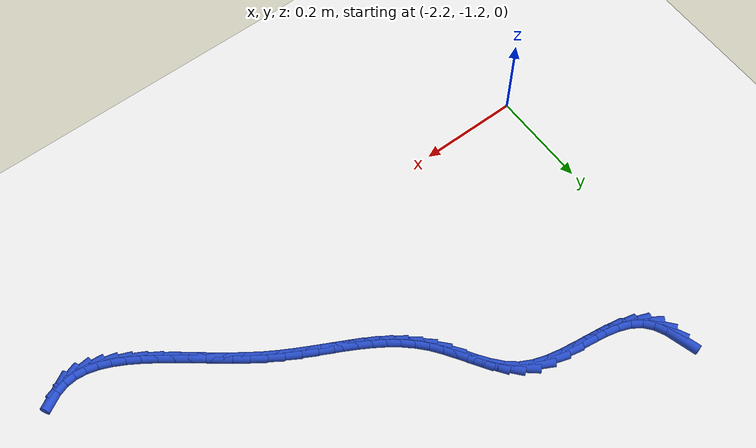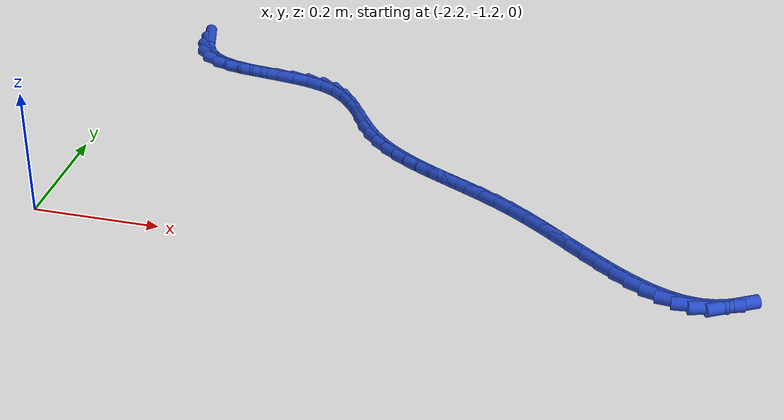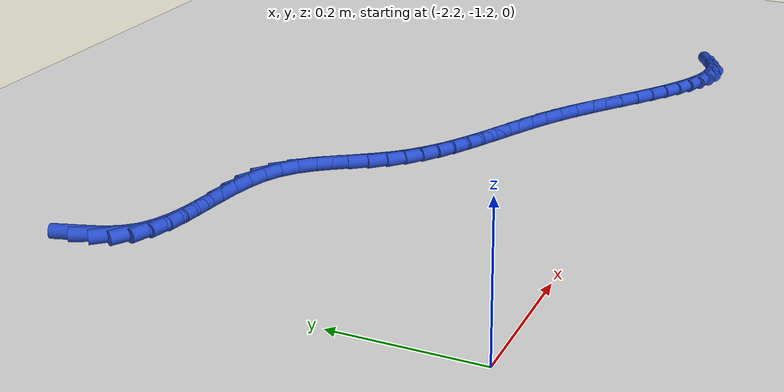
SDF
<sdf version="1.6">
 <world name="default">
  <model name="ground_plane">
   <static>1</static>
   <link name="link">
    <collision name="collision">
     <geometry><plane><normal>0 0 1</normal><size>100 100</size></plane></geometry>
     <surface><friction><ode><mu>100</mu><mu2>50</mu2></ode></friction></surface>
    </collision>
    <visual name="visual">
     <cast_shadows>0</cast_shadows>
     <geometry><plane><normal>0 0 1</normal><size>100 100</size></plane></geometry>
     <material>
      <script><uri>file://media/materials/scripts/gazebo.material</uri><name>Gazebo/WhiteGlow</name></script>
     </material>
    </visual>
   </link>
  </model>
  <model name="line">
   <link name="link_148">
    <pose>-2.1224701203827667 -0.6109059372591643 0.01 0 1.57 -1.2890570382060071</pose>
    <collision name="collision">
     <geometry><cylinder><radius>0.01</radius><length>0.08</length></cylinder></geometry>
    </collision>
    <visual name="visual">
     <material>
      <script><name>Gazebo/Blue</name><uri>file://media/materials/scripts/gazebo.material</uri></script>
     </material>
     <geometry><cylinder><radius>0.01</radius><length>0.08</length></cylinder></geometry>
    </visual>
   </link>
   <link name="link_149">
    <pose>-2.11513709954624 -0.6362412813130506 0.01 0 1.57 -1.1098917045002723</pose>
    <collision name="collision">
     <geometry><cylinder><radius>0.01</radius><length>0.08</length></cylinder></geometry>
    </collision>
    <visual name="visual">
     <material>
      <script><name>Gazebo/Blue</name><uri>file://media/materials/scripts/gazebo.material</uri></script>
     </material>
     <geometry><cylinder><radius>0.01</radius><length>0.08</length></cylinder></geometry>
    </visual>
   </link>
   <link name="link_150">
    <pose>-2.1042820113516933 -0.6581011561322543 0.01 0 1.57 -0.8658208890042287</pose>
    <collision name="collision">
     <geometry><cylinder><radius>0.01</radius><length>0.08</length></cylinder></geometry>
    </collision>
    <visual name="visual">
     <material>
      <script><name>Gazebo/Blue</name><uri>file://media/materials/scripts/gazebo.material</uri></script>
     </material>
     <geometry><cylinder><radius>0.01</radius><length>0.08</length></cylinder></geometry>
    </visual>
   </link>
   <link name="link_151">
    <pose>-2.08924793823049 -0.675771057123752 0.01 0 1.57 -0.5837029706741286</pose>
    <collision name="collision">
     <geometry><cylinder><radius>0.01</radius><length>0.08</length></cylinder></geometry>
    </collision>
    <visual name="visual">
     <material>
      <script><name>Gazebo/Blue</name><uri>file://media/materials/scripts/gazebo.material</uri></script>
     </material>
     <geometry><cylinder><radius>0.01</radius><length>0.08</length></cylinder></geometry>
    </visual>
   </link>
   <link name="link_152">
    <pose>-2.0695790133497622 -0.6887618666631259 0.01 0 1.57 -0.36433519599291586</pose>
    <collision name="collision">
     <geometry><cylinder><radius>0.01</radius><length>0.08</length></cylinder></geometry>
    </collision>
    <visual name="visual">
     <material>
      <script><name>Gazebo/Blue</name><uri>file://media/materials/scripts/gazebo.material</uri></script>
     </material>
     <geometry><cylinder><radius>0.01</radius><length>0.08</length></cylinder></geometry>
    </visual>
   </link>
   <link name="link_153">
    <pose>-2.0458974718548637 -0.6977930682076284 0.01 0 1.57 -0.22787009067466782</pose>
    <collision name="collision">
     <geometry><cylinder><radius>0.01</radius><length>0.08</length></cylinder></geometry>
    </collision>
    <visual name="visual">
     <material>
      <script><name>Gazebo/Blue</name><uri>file://media/materials/scripts/gazebo.material</uri></script>
     </material>
     <geometry><cylinder><radius>0.01</radius><length>0.08</length></cylinder></geometry>
    </visual>
   </link>
   <link name="link_154">
    <pose>-2.0191853884349884 -0.703987541619211 0.01 0 1.57 -0.15455918231804705</pose>
    <collision name="collision">
     <geometry><cylinder><radius>0.01</radius><length>0.08</length></cylinder></geometry>
    </collision>
    <visual name="visual">
     <material>
      <script><name>Gazebo/Blue</name><uri>file://media/materials/scripts/gazebo.material</uri></script>
     </material>
     <geometry><cylinder><radius>0.01</radius><length>0.08</length></cylinder></geometry>
    </visual>
   </link>
   <link name="link_155">
    <pose>-1.990425088464767 -0.7084684477895372 0.01 0 1.57 -0.1297067259883996</pose>
    <collision name="collision">
     <geometry><cylinder><radius>0.01</radius><length>0.08</length></cylinder></geometry>
    </collision>
    <visual name="visual">
     <material>
      <script><name>Gazebo/Blue</name><uri>file://media/materials/scripts/gazebo.material</uri></script>
     </material>
     <geometry><cylinder><radius>0.01</radius><length>0.08</length></cylinder></geometry>
    </visual>
   </link>
   <link name="link_156">
    <pose>-1.960598897318829 -0.7123589476102717 0.01 0 1.57 -0.1468224834271111</pose>
    <collision name="collision">
     <geometry><cylinder><radius>0.01</radius><length>0.08</length></cylinder></geometry>
    </collision>
    <visual name="visual">
     <material>
      <script><name>Gazebo/Blue</name><uri>file://media/materials/scripts/gazebo.material</uri></script>
     </material>
     <geometry><cylinder><radius>0.01</radius><length>0.08</length></cylinder></geometry>
    </visual>
   </link>
   <link name="link_157">
    <pose>-1.9306891403718072 -0.7167822019730778 0.01 0 1.57 -0.20655836515871398</pose>
    <collision name="collision">
     <geometry><cylinder><radius>0.01</radius><length>0.08</length></cylinder></geometry>
    </collision>
    <visual name="visual">
     <material>
      <script><name>Gazebo/Blue</name><uri>file://media/materials/scripts/gazebo.material</uri></script>
     </material>
     <geometry><cylinder><radius>0.01</radius><length>0.08</length></cylinder></geometry>
    </visual>
   </link>
   <link name="link_158">
    <pose>-1.9016781429983314 -0.7228613717696208 0.01 0 1.57 -0.3155989814128417</pose>
    <collision name="collision">
     <geometry><cylinder><radius>0.01</radius><length>0.08</length></cylinder></geometry>
    </collision>
    <visual name="visual">
     <material>
      <script><name>Gazebo/Blue</name><uri>file://media/materials/scripts/gazebo.material</uri></script>
     </material>
     <geometry><cylinder><radius>0.01</radius><length>0.08</length></cylinder></geometry>
    </visual>
   </link>
   <link name="link_159">
    <pose>-1.874548230573033 -0.7317196178915643 0.01 0 1.57 -0.48409556712394136</pose>
    <collision name="collision">
     <geometry><cylinder><radius>0.01</radius><length>0.08</length></cylinder></geometry>
    </collision>
    <visual name="visual">
     <material>
      <script><name>Gazebo/Blue</name><uri>file://media/materials/scripts/gazebo.material</uri></script>
     </material>
     <geometry><cylinder><radius>0.01</radius><length>0.08</length></cylinder></geometry>
    </visual>
   </link>
   <link name="link_160">
    <pose>-1.8502814547759139 -0.7444797585713886 0.01 0 1.57 -0.6917522399527462</pose>
    <collision name="collision">
     <geometry><cylinder><radius>0.01</radius><length>0.08</length></cylinder></geometry>
    </collision>
    <visual name="visual">
     <material>
      <script><name>Gazebo/Blue</name><uri>file://media/materials/scripts/gazebo.material</uri></script>
     </material>
     <geometry><cylinder><radius>0.01</radius><length>0.08</length></cylinder></geometry>
    </visual>
   </link>
   <link name="link_161">
    <pose>-1.829441682431414 -0.761741054517562 0.01 0 1.57 -0.8540213640241674</pose>
    <collision name="collision">
     <geometry><cylinder><radius>0.01</radius><length>0.08</length></cylinder></geometry>
    </collision>
    <visual name="visual">
     <material>
      <script><name>Gazebo/Blue</name><uri>file://media/materials/scripts/gazebo.material</uri></script>
     </material>
     <geometry><cylinder><radius>0.01</radius><length>0.08</length></cylinder></geometry>
    </visual>
   </link>
   <link name="link_162">
    <pose>-1.811331817506198 -0.7825240708380256 0.01 0 1.57 -0.9544525705400136</pose>
    <collision name="collision">
     <geometry><cylinder><radius>0.01</radius><length>0.08</length></cylinder></geometry>
    </collision>
    <visual name="visual">
     <material>
      <script><name>Gazebo/Blue</name><uri>file://media/materials/scripts/gazebo.material</uri></script>
     </material>
     <geometry><cylinder><radius>0.01</radius><length>0.08</length></cylinder></geometry>
    </visual>
   </link>
   <link name="link_163">
    <pose>-1.7950180401327391 -0.8055530000130319 0.01 0 1.57 -0.9987645517099203</pose>
    <collision name="collision">
     <geometry><cylinder><radius>0.01</radius><length>0.08</length></cylinder></geometry>
    </collision>
    <visual name="visual">
     <material>
      <script><name>Gazebo/Blue</name><uri>file://media/materials/scripts/gazebo.material</uri></script>
     </material>
     <geometry><cylinder><radius>0.01</radius><length>0.08</length></cylinder></geometry>
    </visual>
   </link>
   <link name="link_164">
    <pose>-1.779566530443511 -0.8295520345228324 0.01 0 1.57 -0.990798155095075</pose>
    <collision name="collision">
     <geometry><cylinder><radius>0.01</radius><length>0.08</length></cylinder></geometry>
    </collision>
    <visual name="visual">
     <material>
      <script><name>Gazebo/Blue</name><uri>file://media/materials/scripts/gazebo.material</uri></script>
     </material>
     <geometry><cylinder><radius>0.01</radius><length>0.08</length></cylinder></geometry>
    </visual>
   </link>
   <link name="link_165">
    <pose>-1.764043468570989 -0.8532453668476805 0.01 0 1.57 -0.9290298303198282</pose>
    <collision name="collision">
     <geometry><cylinder><radius>0.01</radius><length>0.08</length></cylinder></geometry>
    </collision>
    <visual name="visual">
     <material>
      <script><name>Gazebo/Blue</name><uri>file://media/materials/scripts/gazebo.material</uri></script>
     </material>
     <geometry><cylinder><radius>0.01</radius><length>0.08</length></cylinder></geometry>
    </visual>
   </link>
   <link name="link_166">
    <pose>-1.7475171096751556 -0.87536032679047 0.01 0 1.57 -0.8282583431002242</pose>
    <collision name="collision">
     <geometry><cylinder><radius>0.01</radius><length>0.08</length></cylinder></geometry>
    </collision>
    <visual name="visual">
     <material>
      <script><name>Gazebo/Blue</name><uri>file://media/materials/scripts/gazebo.material</uri></script>
     </material>
     <geometry><cylinder><radius>0.01</radius><length>0.08</length></cylinder></geometry>
    </visual>
   </link>
   <link name="link_167">
    <pose>-1.729383175700186 -0.8951193551596277 0.01 0 1.57 -0.7316618009566271</pose>
    <collision name="collision">
     <geometry><cylinder><radius>0.01</radius><length>0.08</length></cylinder></geometry>
    </collision>
    <visual name="visual">
     <material>
      <script><name>Gazebo/Blue</name><uri>file://media/materials/scripts/gazebo.material</uri></script>
     </material>
     <geometry><cylinder><radius>0.01</radius><length>0.08</length></cylinder></geometry>
    </visual>
   </link>
   <link name="link_168">
    <pose>-1.7097192727247368 -0.9127758624856347 0.01 0 1.57 -0.6484372255157665</pose>
    <collision name="collision">
     <geometry><cylinder><radius>0.01</radius><length>0.08</length></cylinder></geometry>
    </collision>
    <visual name="visual">
     <material>
      <script><name>Gazebo/Blue</name><uri>file://media/materials/scripts/gazebo.material</uri></script>
     </material>
     <geometry><cylinder><radius>0.01</radius><length>0.08</length></cylinder></geometry>
    </visual>
   </link>
   <link name="link_169">
    <pose>-1.6886881606026334 -0.9287120069255539 0.01 0 1.57 -0.5809403060360434</pose>
    <collision name="collision">
     <geometry><cylinder><radius>0.01</radius><length>0.08</length></cylinder></geometry>
    </collision>
    <visual name="visual">
     <material>
      <script><name>Gazebo/Blue</name><uri>file://media/materials/scripts/gazebo.material</uri></script>
     </material>
     <geometry><cylinder><radius>0.01</radius><length>0.08</length></cylinder></geometry>
    </visual>
   </link>
   <link name="link_170">
    <pose>-1.6664525991877022 -0.9433099466364484 0.01 0 1.57 -0.5301073178223044</pose>
    <collision name="collision">
     <geometry><cylinder><radius>0.01</radius><length>0.08</length></cylinder></geometry>
    </collision>
    <visual name="visual">
     <material>
      <script><name>Gazebo/Blue</name><uri>file://media/materials/scripts/gazebo.material</uri></script>
     </material>
     <geometry><cylinder><radius>0.01</radius><length>0.08</length></cylinder></geometry>
    </visual>
   </link>
   <link name="link_171">
    <pose>-1.6431753483337697 -0.956951839775381 0.01 0 1.57 -0.4958915166301292</pose>
    <collision name="collision">
     <geometry><cylinder><radius>0.01</radius><length>0.08</length></cylinder></geometry>
    </collision>
    <visual name="visual">
     <material>
      <script><name>Gazebo/Blue</name><uri>file://media/materials/scripts/gazebo.material</uri></script>
     </material>
     <geometry><cylinder><radius>0.01</radius><length>0.08</length></cylinder></geometry>
    </visual>
   </link>
   <link name="link_172">
    <pose>-1.6190191678946602 -0.9700198444994148 0.01 0 1.57 -0.47770265692122726</pose>
    <collision name="collision">
     <geometry><cylinder><radius>0.01</radius><length>0.08</length></cylinder></geometry>
    </collision>
    <visual name="visual">
     <material>
      <script><name>Gazebo/Blue</name><uri>file://media/materials/scripts/gazebo.material</uri></script>
     </material>
     <geometry><cylinder><radius>0.01</radius><length>0.08</length></cylinder></geometry>
    </visual>
   </link>
   <link name="link_173">
    <pose>-1.5941468177242026 -0.9828961189656126 0.01 0 1.57 -0.4747182512362648</pose>
    <collision name="collision">
     <geometry><cylinder><radius>0.01</radius><length>0.08</length></cylinder></geometry>
    </collision>
    <visual name="visual">
     <material>
      <script><name>Gazebo/Blue</name><uri>file://media/materials/scripts/gazebo.material</uri></script>
     </material>
     <geometry><cylinder><radius>0.01</radius><length>0.08</length></cylinder></geometry>
    </visual>
   </link>
   <link name="link_174">
    <pose>-1.5687210576762218 -0.9959628213310375 0.01 0 1.57 -0.48604495912940565</pose>
    <collision name="collision">
     <geometry><cylinder><radius>0.01</radius><length>0.08</length></cylinder></geometry>
    </collision>
    <visual name="visual">
     <material>
      <script><name>Gazebo/Blue</name><uri>file://media/materials/scripts/gazebo.material</uri></script>
     </material>
     <geometry><cylinder><radius>0.01</radius><length>0.08</length></cylinder></geometry>
    </visual>
   </link>
   <link name="link_175">
    <pose>-1.5429046476045434 -1.009602109752752 0.01 0 1.57 -0.5107579104476376</pose>
    <collision name="collision">
     <geometry><cylinder><radius>0.01</radius><length>0.08</length></cylinder></geometry>
    </collision>
    <visual name="visual">
     <material>
      <script><name>Gazebo/Blue</name><uri>file://media/materials/scripts/gazebo.material</uri></script>
     </material>
     <geometry><cylinder><radius>0.01</radius><length>0.08</length></cylinder></geometry>
    </visual>
   </link>
   <link name="link_176">
    <pose>-1.5168603473629942 -1.0241961423878203 0.01 0 1.57 -0.5478567505402311</pose>
    <collision name="collision">
     <geometry><cylinder><radius>0.01</radius><length>0.08</length></cylinder></geometry>
    </collision>
    <visual name="visual">
     <material>
      <script><name>Gazebo/Blue</name><uri>file://media/materials/scripts/gazebo.material</uri></script>
     </material>
     <geometry><cylinder><radius>0.01</radius><length>0.08</length></cylinder></geometry>
    </visual>
   </link>
   <link name="link_177">
    <pose>-1.4907509168054003 -1.0401270773933042 0.01 0 1.57 -0.5926675003117303</pose>
    <collision name="collision">
     <geometry><cylinder><radius>0.01</radius><length>0.08</length></cylinder></geometry>
    </collision>
    <visual name="visual">
     <material>
      <script><name>Gazebo/Blue</name><uri>file://media/materials/scripts/gazebo.material</uri></script>
     </material>
     <geometry><cylinder><radius>0.01</radius><length>0.08</length></cylinder></geometry>
    </visual>
   </link>
   <link name="link_178">
    <pose>-1.4647222460436653 -1.0576554589663134 0.01 0 1.57 -0.6277332354118236</pose>
    <collision name="collision">
     <geometry><cylinder><radius>0.01</radius><length>0.08</length></cylinder></geometry>
    </collision>
    <visual name="visual">
     <material>
      <script><name>Gazebo/Blue</name><uri>file://media/materials/scripts/gazebo.material</uri></script>
     </material>
     <geometry><cylinder><radius>0.01</radius><length>0.08</length></cylinder></geometry>
    </visual>
   </link>
   <link name="link_179">
    <pose>-1.4388366461114444 -1.076439309776229 0.01 0 1.57 -0.6492410481788159</pose>
    <collision name="collision">
     <geometry><cylinder><radius>0.01</radius><length>0.08</length></cylinder></geometry>
    </collision>
    <visual name="visual">
     <material>
      <script><name>Gazebo/Blue</name><uri>file://media/materials/scripts/gazebo.material</uri></script>
     </material>
     <geometry><cylinder><radius>0.01</radius><length>0.08</length></cylinder></geometry>
    </visual>
   </link>
   <link name="link_180">
    <pose>-1.4131305917449106 -1.0959503986385324 0.01 0 1.57 -0.6582125399193792</pose>
    <collision name="collision">
     <geometry><cylinder><radius>0.01</radius><length>0.08</length></cylinder></geometry>
    </collision>
    <visual name="visual">
     <material>
      <script><name>Gazebo/Blue</name><uri>file://media/materials/scripts/gazebo.material</uri></script>
     </material>
     <geometry><cylinder><radius>0.01</radius><length>0.08</length></cylinder></geometry>
    </visual>
   </link>
   <link name="link_181">
    <pose>-1.3876405501089855 -1.115660439787555 0.01 0 1.57 -0.6548785705345987</pose>
    <collision name="collision">
     <geometry><cylinder><radius>0.01</radius><length>0.08</length></cylinder></geometry>
    </collision>
    <visual name="visual">
     <material>
      <script><name>Gazebo/Blue</name><uri>file://media/materials/scripts/gazebo.material</uri></script>
     </material>
     <geometry><cylinder><radius>0.01</radius><length>0.08</length></cylinder></geometry>
    </visual>
   </link>
   <link name="link_182">
    <pose>-1.3624029883685917 -1.1350411474576276 0.01 0 1.57 -0.6386512995129178</pose>
    <collision name="collision">
     <geometry><cylinder><radius>0.01</radius><length>0.08</length></cylinder></geometry>
    </collision>
    <visual name="visual">
     <material>
      <script><name>Gazebo/Blue</name><uri>file://media/materials/scripts/gazebo.material</uri></script>
     </material>
     <geometry><cylinder><radius>0.01</radius><length>0.08</length></cylinder></geometry>
    </visual>
   </link>
   <link name="link_183">
    <pose>-1.3374543736886502 -1.1535642358830824 0.01 0 1.57 -0.6080209194020597</pose>
    <collision name="collision">
     <geometry><cylinder><radius>0.01</radius><length>0.08</length></cylinder></geometry>
    </collision>
    <visual name="visual">
     <material>
      <script><name>Gazebo/Blue</name><uri>file://media/materials/scripts/gazebo.material</uri></script>
     </material>
     <geometry><cylinder><radius>0.01</radius><length>0.08</length></cylinder></geometry>
    </visual>
   </link>
   <link name="link_184">
    <pose>-1.3128311732340825 -1.1707014192982501 0.01 0 1.57 -0.560365916201067</pose>
    <collision name="collision">
     <geometry><cylinder><radius>0.01</radius><length>0.08</length></cylinder></geometry>
    </collision>
    <visual name="visual">
     <material>
      <script><name>Gazebo/Blue</name><uri>file://media/materials/scripts/gazebo.material</uri></script>
     </material>
     <geometry><cylinder><radius>0.01</radius><length>0.08</length></cylinder></geometry>
    </visual>
   </link>
   <link name="link_185">
    <pose>-1.28856985416981 -1.1859244119374623 0.01 0 1.57 -0.49170438479112</pose>
    <collision name="collision">
     <geometry><cylinder><radius>0.01</radius><length>0.08</length></cylinder></geometry>
    </collision>
    <visual name="visual">
     <material>
      <script><name>Gazebo/Blue</name><uri>file://media/materials/scripts/gazebo.material</uri></script>
     </material>
     <geometry><cylinder><radius>0.01</radius><length>0.08</length></cylinder></geometry>
    </visual>
   </link>
   <link name="link_186">
    <pose>-1.264706883660755 -1.1987049280350508 0.01 0 1.57 -0.3965364082964298</pose>
    <collision name="collision">
     <geometry><cylinder><radius>0.01</radius><length>0.08</length></cylinder></geometry>
    </collision>
    <visual name="visual">
     <material>
      <script><name>Gazebo/Blue</name><uri>file://media/materials/scripts/gazebo.material</uri></script>
     </material>
     <geometry><cylinder><radius>0.01</radius><length>0.08</length></cylinder></geometry>
    </visual>
   </link>
   <link name="link_187">
    <pose>-1.2412787288718385 -1.2085146818253472 0.01 0 1.57 -0.2682676354535225</pose>
    <collision name="collision">
     <geometry><cylinder><radius>0.01</radius><length>0.08</length></cylinder></geometry>
    </collision>
    <visual name="visual">
     <material>
      <script><name>Gazebo/Blue</name><uri>file://media/materials/scripts/gazebo.material</uri></script>
     </material>
     <geometry><cylinder><radius>0.01</radius><length>0.08</length></cylinder></geometry>
    </visual>
   </link>
   <link name="link_188">
    <pose>-1.2183218569679815 -1.2148253875426822 0.01 0 1.57 -0.10136459454422768</pose>
    <collision name="collision">
     <geometry><cylinder><radius>0.01</radius><length>0.08</length></cylinder></geometry>
    </collision>
    <visual name="visual">
     <material>
      <script><name>Gazebo/Blue</name><uri>file://media/materials/scripts/gazebo.material</uri></script>
     </material>
     <geometry><cylinder><radius>0.01</radius><length>0.08</length></cylinder></geometry>
    </visual>
   </link>
   <link name="link_189">
    <pose>-1.195872735114107 -1.217108759421388 0.01 0 1.57 0.10336268880782142</pose>
    <collision name="collision">
     <geometry><cylinder><radius>0.01</radius><length>0.08</length></cylinder></geometry>
    </collision>
    <visual name="visual">
     <material>
      <script><name>Gazebo/Blue</name><uri>file://media/materials/scripts/gazebo.material</uri></script>
     </material>
     <geometry><cylinder><radius>0.01</radius><length>0.08</length></cylinder></geometry>
    </visual>
   </link>
   <link name="link_190">
    <pose>-1.1739678304751362 -1.2148365116957955 0.01 0 1.57 0.32561847243879116</pose>
    <collision name="collision">
     <geometry><cylinder><radius>0.01</radius><length>0.08</length></cylinder></geometry>
    </collision>
    <visual name="visual">
     <material>
      <script><name>Gazebo/Blue</name><uri>file://media/materials/scripts/gazebo.material</uri></script>
     </material>
     <geometry><cylinder><radius>0.01</radius><length>0.08</length></cylinder></geometry>
    </visual>
   </link>
   <link name="link_191">
    <pose>-1.1526212240449527 -1.207629116298587 0.01 0 1.57 0.5104708970421118</pose>
    <collision name="collision">
     <geometry><cylinder><radius>0.01</radius><length>0.08</length></cylinder></geometry>
    </collision>
    <visual name="visual">
     <material>
      <script><name>Gazebo/Blue</name><uri>file://media/materials/scripts/gazebo.material</uri></script>
     </material>
     <geometry><cylinder><radius>0.01</radius><length>0.08</length></cylinder></geometry>
    </visual>
   </link>
  </model>
 </world>
</sdf>
